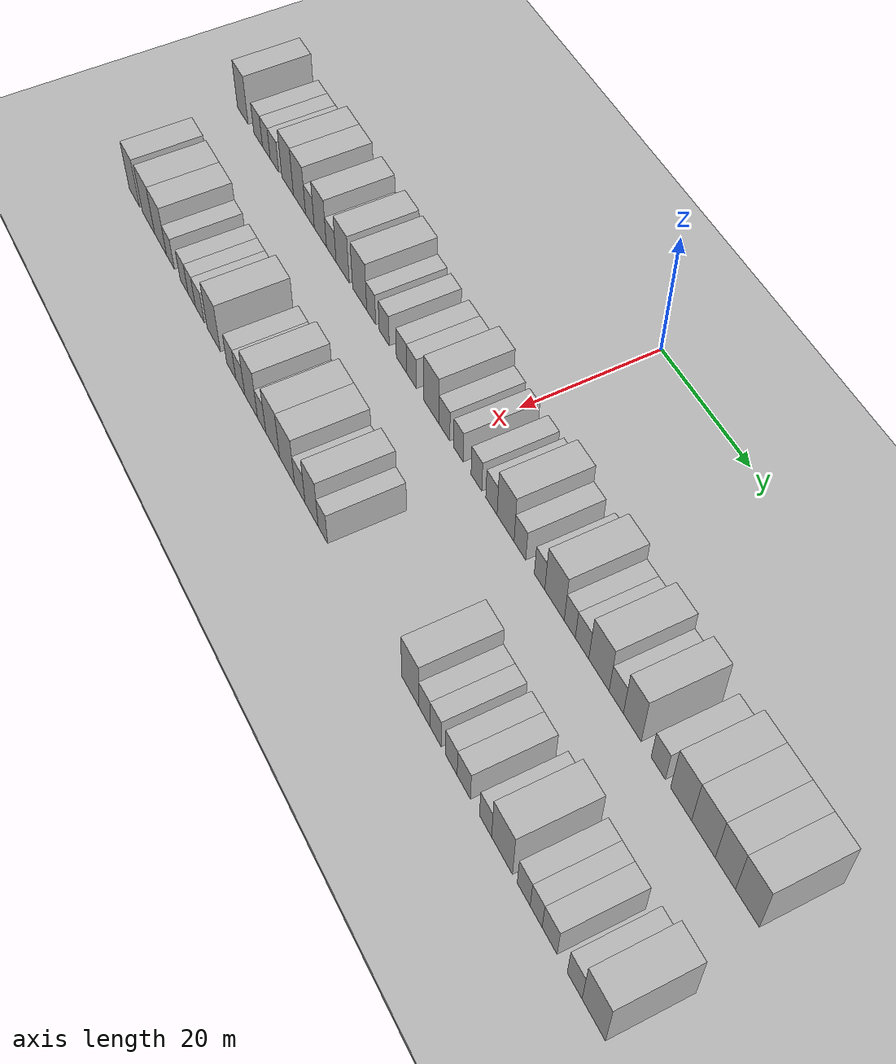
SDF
<sdf version="1.6">
 <world name="default">
  <include><name>ground_plane_1</name><uri>model://HANNAS_ground_plane</uri></include>
  <include>
   <name>ground_plane_2</name>
   <uri>model://HANNAS_ground_plane</uri>
   <pose>100 0 0  0 0 0</pose>
  </include>
  <model name="building_34">
   <static>1</static>
   <pose>25.0000 -61.7479 0 0.000000 0.000000 0.000000</pose>
   <link name="link">
    <pose>0 0 4.50 0 0 0</pose>
    <collision name="collision"><geometry><box><size>10.0000 3.7239 9.0000</size></box></geometry></collision>
    <visual name="visual">
     <cast_shadows>0</cast_shadows>
     <geometry><box><size>10.0000 3.7239 9.0000</size></box></geometry>
     <material>
      <script>
       <uri>model://HANNAS_wall/materials/scripts</uri>
       <uri>model://HANNAS_wall/materials/textures</uri>
       <name>vrc/HANNAS_wall</name>
      </script>
     </material>
    </visual>
   </link>
  </model>
  <model name="building_35">
   <static>1</static>
   <pose>25.0000 -56.4056 0 0.000000 0.000000 0.000000</pose>
   <link name="link">
    <pose>0 0 3.00 0 0 0</pose>
    <collision name="collision"><geometry><box><size>10.0000 2.9605 6.0000</size></box></geometry></collision>
    <visual name="visual">
     <cast_shadows>0</cast_shadows>
     <geometry><box><size>10.0000 2.9605 6.0000</size></box></geometry>
     <material>
      <script>
       <uri>model://HANNAS_wall/materials/scripts</uri>
       <uri>model://HANNAS_wall/materials/textures</uri>
       <name>vrc/HANNAS_wall</name>
      </script>
     </material>
    </visual>
   </link>
  </model>
  <model name="building_36">
   <static>1</static>
   <pose>25.0000 -53.6233 0 0.000000 0.000000 0.000000</pose>
   <link name="link">
    <pose>0 0 3.00 0 0 0</pose>
    <collision name="collision"><geometry><box><size>10.0000 2.6041 6.0000</size></box></geometry></collision>
    <visual name="visual">
     <cast_shadows>0</cast_shadows>
     <geometry><box><size>10.0000 2.6041 6.0000</size></box></geometry>
     <material>
      <script>
       <uri>model://HANNAS_wall/materials/scripts</uri>
       <uri>model://HANNAS_wall/materials/textures</uri>
       <name>vrc/HANNAS_wall</name>
      </script>
     </material>
    </visual>
   </link>
  </model>
  <model name="building_37">
   <static>1</static>
   <pose>25.0000 -50.8717 0 0.000000 0.000000 0.000000</pose>
   <link name="link">
    <pose>0 0 3.00 0 0 0</pose>
    <collision name="collision"><geometry><box><size>10.0000 2.8991 6.0000</size></box></geometry></collision>
    <visual name="visual">
     <cast_shadows>0</cast_shadows>
     <geometry><box><size>10.0000 2.8991 6.0000</size></box></geometry>
     <material>
      <script>
       <uri>model://HANNAS_wall/materials/scripts</uri>
       <uri>model://HANNAS_wall/materials/textures</uri>
       <name>vrc/HANNAS_wall</name>
      </script>
     </material>
    </visual>
   </link>
  </model>
  <model name="building_38">
   <static>1</static>
   <pose>25.0000 -46.5042 0 0.000000 0.000000 0.000000</pose>
   <link name="link">
    <pose>0 0 4.50 0 0 0</pose>
    <collision name="collision"><geometry><box><size>10.0000 3.8361 9.0000</size></box></geometry></collision>
    <visual name="visual">
     <cast_shadows>0</cast_shadows>
     <geometry><box><size>10.0000 3.8361 9.0000</size></box></geometry>
     <material>
      <script>
       <uri>model://HANNAS_wall/materials/scripts</uri>
       <uri>model://HANNAS_wall/materials/textures</uri>
       <name>vrc/HANNAS_wall</name>
      </script>
     </material>
    </visual>
   </link>
  </model>
  <model name="building_39">
   <static>1</static>
   <pose>25.0000 -42.6368 0 0.000000 0.000000 0.000000</pose>
   <link name="link">
    <pose>0 0 4.50 0 0 0</pose>
    <collision name="collision"><geometry><box><size>10.0000 3.8986 9.0000</size></box></geometry></collision>
    <visual name="visual">
     <cast_shadows>0</cast_shadows>
     <geometry><box><size>10.0000 3.8986 9.0000</size></box></geometry>
     <material>
      <script>
       <uri>model://HANNAS_wall/materials/scripts</uri>
       <uri>model://HANNAS_wall/materials/textures</uri>
       <name>vrc/HANNAS_wall</name>
      </script>
     </material>
    </visual>
   </link>
  </model>
  <model name="building_40">
   <static>1</static>
   <pose>25.0000 -39.2942 0 0.000000 0.000000 0.000000</pose>
   <link name="link">
    <pose>0 0 3.00 0 0 0</pose>
    <collision name="collision"><geometry><box><size>10.0000 2.7866 6.0000</size></box></geometry></collision>
    <visual name="visual">
     <cast_shadows>0</cast_shadows>
     <geometry><box><size>10.0000 2.7866 6.0000</size></box></geometry>
     <material>
      <script>
       <uri>model://HANNAS_wall/materials/scripts</uri>
       <uri>model://HANNAS_wall/materials/textures</uri>
       <name>vrc/HANNAS_wall</name>
      </script>
     </material>
    </visual>
   </link>
  </model>
  <model name="building_41">
   <static>1</static>
   <pose>25.0000 -36.0034 0 0.000000 0.000000 0.000000</pose>
   <link name="link">
    <pose>0 0 4.50 0 0 0</pose>
    <collision name="collision"><geometry><box><size>10.0000 3.7951 9.0000</size></box></geometry></collision>
    <visual name="visual">
     <cast_shadows>0</cast_shadows>
     <geometry><box><size>10.0000 3.7951 9.0000</size></box></geometry>
     <material>
      <script>
       <uri>model://HANNAS_wall/materials/scripts</uri>
       <uri>model://HANNAS_wall/materials/textures</uri>
       <name>vrc/HANNAS_wall</name>
      </script>
     </material>
    </visual>
   </link>
  </model>
  <model name="building_42">
   <static>1</static>
   <pose>25.0000 -32.6270 0 0.000000 0.000000 0.000000</pose>
   <link name="link">
    <pose>0 0 3.00 0 0 0</pose>
    <collision name="collision"><geometry><box><size>10.0000 2.9575 6.0000</size></box></geometry></collision>
    <visual name="visual">
     <cast_shadows>0</cast_shadows>
     <geometry><box><size>10.0000 2.9575 6.0000</size></box></geometry>
     <material>
      <script>
       <uri>model://HANNAS_wall/materials/scripts</uri>
       <uri>model://HANNAS_wall/materials/textures</uri>
       <name>vrc/HANNAS_wall</name>
      </script>
     </material>
    </visual>
   </link>
  </model>
  <model name="building_43">
   <static>1</static>
   <pose>25.0000 -29.1503 0 0.000000 0.000000 0.000000</pose>
   <link name="link">
    <pose>0 0 4.50 0 0 0</pose>
    <collision name="collision"><geometry><box><size>10.0000 3.9960 9.0000</size></box></geometry></collision>
    <visual name="visual">
     <cast_shadows>0</cast_shadows>
     <geometry><box><size>10.0000 3.9960 9.0000</size></box></geometry>
     <material>
      <script>
       <uri>model://HANNAS_wall/materials/scripts</uri>
       <uri>model://HANNAS_wall/materials/textures</uri>
       <name>vrc/HANNAS_wall</name>
      </script>
     </material>
    </visual>
   </link>
  </model>
  <model name="building_44">
   <static>1</static>
   <pose>25.0000 -24.0661 0 0.000000 0.000000 0.000000</pose>
   <link name="link">
    <pose>0 0 4.50 0 0 0</pose>
    <collision name="collision"><geometry><box><size>10.0000 4.1723 9.0000</size></box></geometry></collision>
    <visual name="visual">
     <cast_shadows>0</cast_shadows>
     <geometry><box><size>10.0000 4.1723 9.0000</size></box></geometry>
     <material>
      <script>
       <uri>model://HANNAS_wall/materials/scripts</uri>
       <uri>model://HANNAS_wall/materials/textures</uri>
       <name>vrc/HANNAS_wall</name>
      </script>
     </material>
    </visual>
   </link>
  </model>
  <model name="building_45">
   <static>1</static>
   <pose>25.0000 -20.6764 0 0.000000 0.000000 0.000000</pose>
   <link name="link">
    <pose>0 0 3.00 0 0 0</pose>
    <collision name="collision"><geometry><box><size>10.0000 2.6072 6.0000</size></box></geometry></collision>
    <visual name="visual">
     <cast_shadows>0</cast_shadows>
     <geometry><box><size>10.0000 2.6072 6.0000</size></box></geometry>
     <material>
      <script>
       <uri>model://HANNAS_wall/materials/scripts</uri>
       <uri>model://HANNAS_wall/materials/textures</uri>
       <name>vrc/HANNAS_wall</name>
      </script>
     </material>
    </visual>
   </link>
  </model>
  <model name="building_46">
   <static>1</static>
   <pose>25.0000 -16.9450 0 0.000000 0.000000 0.000000</pose>
   <link name="link">
    <pose>0 0 3.00 0 0 0</pose>
    <collision name="collision"><geometry><box><size>10.0000 2.8556 6.0000</size></box></geometry></collision>
    <visual name="visual">
     <cast_shadows>0</cast_shadows>
     <geometry><box><size>10.0000 2.8556 6.0000</size></box></geometry>
     <material>
      <script>
       <uri>model://HANNAS_wall/materials/scripts</uri>
       <uri>model://HANNAS_wall/materials/textures</uri>
       <name>vrc/HANNAS_wall</name>
      </script>
     </material>
    </visual>
   </link>
  </model>
  <model name="building_47">
   <static>1</static>
   <pose>25.0000 -12.0820 0 0.000000 0.000000 0.000000</pose>
   <link name="link">
    <pose>0 0 3.00 0 0 0</pose>
    <collision name="collision"><geometry><box><size>10.0000 2.8704 6.0000</size></box></geometry></collision>
    <visual name="visual">
     <cast_shadows>0</cast_shadows>
     <geometry><box><size>10.0000 2.8704 6.0000</size></box></geometry>
     <material>
      <script>
       <uri>model://HANNAS_wall/materials/scripts</uri>
       <uri>model://HANNAS_wall/materials/textures</uri>
       <name>vrc/HANNAS_wall</name>
      </script>
     </material>
    </visual>
   </link>
  </model>
  <model name="building_48">
   <static>1</static>
   <pose>25.0000 -9.2981 0 0.000000 0.000000 0.000000</pose>
   <link name="link">
    <pose>0 0 3.00 0 0 0</pose>
    <collision name="collision"><geometry><box><size>10.0000 2.6974 6.0000</size></box></geometry></collision>
    <visual name="visual">
     <cast_shadows>0</cast_shadows>
     <geometry><box><size>10.0000 2.6974 6.0000</size></box></geometry>
     <material>
      <script>
       <uri>model://HANNAS_wall/materials/scripts</uri>
       <uri>model://HANNAS_wall/materials/textures</uri>
       <name>vrc/HANNAS_wall</name>
      </script>
     </material>
    </visual>
   </link>
  </model>
  <model name="building_49">
   <static>1</static>
   <pose>25.0000 -3.9427 0 0.000000 0.000000 0.000000</pose>
   <link name="link">
    <pose>0 0 4.50 0 0 0</pose>
    <collision name="collision"><geometry><box><size>10.0000 4.0133 9.0000</size></box></geometry></collision>
    <visual name="visual">
     <cast_shadows>0</cast_shadows>
     <geometry><box><size>10.0000 4.0133 9.0000</size></box></geometry>
     <material>
      <script>
       <uri>model://HANNAS_wall/materials/scripts</uri>
       <uri>model://HANNAS_wall/materials/textures</uri>
       <name>vrc/HANNAS_wall</name>
      </script>
     </material>
    </visual>
   </link>
  </model>
  <model name="building_50">
   <static>1</static>
   <pose>25.0000 -0.5174 0 0.000000 0.000000 0.000000</pose>
   <link name="link">
    <pose>0 0 3.00 0 0 0</pose>
    <collision name="collision"><geometry><box><size>10.0000 2.8372 6.0000</size></box></geometry></collision>
    <visual name="visual">
     <cast_shadows>0</cast_shadows>
     <geometry><box><size>10.0000 2.8372 6.0000</size></box></geometry>
     <material>
      <script>
       <uri>model://HANNAS_wall/materials/scripts</uri>
       <uri>model://HANNAS_wall/materials/textures</uri>
       <name>vrc/HANNAS_wall</name>
      </script>
     </material>
    </visual>
   </link>
  </model>
  <model name="building_51">
   <static>1</static>
   <pose>25.0000 3.1244 0 0.000000 0.000000 0.000000</pose>
   <link name="link">
    <pose>0 0 3.00 0 0 0</pose>
    <collision name="collision"><geometry><box><size>10.0000 2.4465 6.0000</size></box></geometry></collision>
    <visual name="visual">
     <cast_shadows>0</cast_shadows>
     <geometry><box><size>10.0000 2.4465 6.0000</size></box></geometry>
     <material>
      <script>
       <uri>model://HANNAS_wall/materials/scripts</uri>
       <uri>model://HANNAS_wall/materials/textures</uri>
       <name>vrc/HANNAS_wall</name>
      </script>
     </material>
    </visual>
   </link>
  </model>
  <model name="building_52">
   <static>1</static>
   <pose>25.0000 7.6883 0 0.000000 0.000000 0.000000</pose>
   <link name="link">
    <pose>0 0 3.00 0 0 0</pose>
    <collision name="collision"><geometry><box><size>10.0000 2.6811 6.0000</size></box></geometry></collision>
    <visual name="visual">
     <cast_shadows>0</cast_shadows>
     <geometry><box><size>10.0000 2.6811 6.0000</size></box></geometry>
     <material>
      <script>
       <uri>model://HANNAS_wall/materials/scripts</uri>
       <uri>model://HANNAS_wall/materials/textures</uri>
       <name>vrc/HANNAS_wall</name>
      </script>
     </material>
    </visual>
   </link>
  </model>
  <model name="building_53">
   <static>1</static>
   <pose>25.0000 11.4147 0 0.000000 0.000000 0.000000</pose>
   <link name="link">
    <pose>0 0 3.00 0 0 0</pose>
    <collision name="collision"><geometry><box><size>10.0000 2.7717 6.0000</size></box></geometry></collision>
    <visual name="visual">
     <cast_shadows>0</cast_shadows>
     <geometry><box><size>10.0000 2.7717 6.0000</size></box></geometry>
     <material>
      <script>
       <uri>model://HANNAS_wall/materials/scripts</uri>
       <uri>model://HANNAS_wall/materials/textures</uri>
       <name>vrc/HANNAS_wall</name>
      </script>
     </material>
    </visual>
   </link>
  </model>
  <model name="building_54">
   <static>1</static>
   <pose>25.0000 14.8479 0 0.000000 0.000000 0.000000</pose>
   <link name="link">
    <pose>0 0 4.50 0 0 0</pose>
    <collision name="collision"><geometry><box><size>10.0000 4.0949 9.0000</size></box></geometry></collision>
    <visual name="visual">
     <cast_shadows>0</cast_shadows>
     <geometry><box><size>10.0000 4.0949 9.0000</size></box></geometry>
     <material>
      <script>
       <uri>model://HANNAS_wall/materials/scripts</uri>
       <uri>model://HANNAS_wall/materials/textures</uri>
       <name>vrc/HANNAS_wall</name>
      </script>
     </material>
    </visual>
   </link>
  </model>
  <model name="building_55">
   <static>1</static>
   <pose>25.0000 18.2816 0 0.000000 0.000000 0.000000</pose>
   <link name="link">
    <pose>0 0 3.00 0 0 0</pose>
    <collision name="collision"><geometry><box><size>10.0000 2.7725 6.0000</size></box></geometry></collision>
    <visual name="visual">
     <cast_shadows>0</cast_shadows>
     <geometry><box><size>10.0000 2.7725 6.0000</size></box></geometry>
     <material>
      <script>
       <uri>model://HANNAS_wall/materials/scripts</uri>
       <uri>model://HANNAS_wall/materials/textures</uri>
       <name>vrc/HANNAS_wall</name>
      </script>
     </material>
    </visual>
   </link>
  </model>
  <model name="building_56">
   <static>1</static>
   <pose>25.0000 22.8732 0 0.000000 0.000000 0.000000</pose>
   <link name="link">
    <pose>0 0 3.00 0 0 0</pose>
    <collision name="collision"><geometry><box><size>10.0000 2.4108 6.0000</size></box></geometry></collision>
    <visual name="visual">
     <cast_shadows>0</cast_shadows>
     <geometry><box><size>10.0000 2.4108 6.0000</size></box></geometry>
     <material>
      <script>
       <uri>model://HANNAS_wall/materials/scripts</uri>
       <uri>model://HANNAS_wall/materials/textures</uri>
       <name>vrc/HANNAS_wall</name>
      </script>
     </material>
    </visual>
   </link>
  </model>
  <model name="building_57">
   <static>1</static>
   <pose>25.0000 26.2850 0 0.000000 0.000000 0.000000</pose>
   <link name="link">
    <pose>0 0 4.50 0 0 0</pose>
    <collision name="collision"><geometry><box><size>10.0000 4.4127 9.0000</size></box></geometry></collision>
    <visual name="visual">
     <cast_shadows>0</cast_shadows>
     <geometry><box><size>10.0000 4.4127 9.0000</size></box></geometry>
     <material>
      <script>
       <uri>model://HANNAS_wall/materials/scripts</uri>
       <uri>model://HANNAS_wall/materials/textures</uri>
       <name>vrc/HANNAS_wall</name>
      </script>
     </material>
    </visual>
   </link>
  </model>
  <model name="building_58">
   <static>1</static>
   <pose>25.0000 29.7248 0 0.000000 0.000000 0.000000</pose>
   <link name="link">
    <pose>0 0 3.00 0 0 0</pose>
    <collision name="collision"><geometry><box><size>10.0000 2.4670 6.0000</size></box></geometry></collision>
    <visual name="visual">
     <cast_shadows>0</cast_shadows>
     <geometry><box><size>10.0000 2.4670 6.0000</size></box></geometry>
     <material>
      <script>
       <uri>model://HANNAS_wall/materials/scripts</uri>
       <uri>model://HANNAS_wall/materials/textures</uri>
       <name>vrc/HANNAS_wall</name>
      </script>
     </material>
    </visual>
   </link>
  </model>
  <model name="building_59">
   <static>1</static>
   <pose>25.0000 32.4260 0 0.000000 0.000000 0.000000</pose>
   <link name="link">
    <pose>0 0 3.00 0 0 0</pose>
    <collision name="collision"><geometry><box><size>10.0000 2.9354 6.0000</size></box></geometry></collision>
    <visual name="visual">
     <cast_shadows>0</cast_shadows>
     <geometry><box><size>10.0000 2.9354 6.0000</size></box></geometry>
     <material>
      <script>
       <uri>model://HANNAS_wall/materials/scripts</uri>
       <uri>model://HANNAS_wall/materials/textures</uri>
       <name>vrc/HANNAS_wall</name>
      </script>
     </material>
    </visual>
   </link>
  </model>
  <model name="building_60">
   <static>1</static>
   <pose>25.0000 36.0770 0 0.000000 0.000000 0.000000</pose>
   <link name="link">
    <pose>0 0 4.50 0 0 0</pose>
    <collision name="collision"><geometry><box><size>10.0000 4.3665 9.0000</size></box></geometry></collision>
    <visual name="visual">
     <cast_shadows>0</cast_shadows>
     <geometry><box><size>10.0000 4.3665 9.0000</size></box></geometry>
     <material>
      <script>
       <uri>model://HANNAS_wall/materials/scripts</uri>
       <uri>model://HANNAS_wall/materials/textures</uri>
       <name>vrc/HANNAS_wall</name>
      </script>
     </material>
    </visual>
   </link>
  </model>
  <model name="building_61">
   <static>1</static>
   <pose>25.0000 39.7541 0 0.000000 0.000000 0.000000</pose>
   <link name="link">
    <pose>0 0 3.00 0 0 0</pose>
    <collision name="collision"><geometry><box><size>10.0000 2.9877 6.0000</size></box></geometry></collision>
    <visual name="visual">
     <cast_shadows>0</cast_shadows>
     <geometry><box><size>10.0000 2.9877 6.0000</size></box></geometry>
     <material>
      <script>
       <uri>model://HANNAS_wall/materials/scripts</uri>
       <uri>model://HANNAS_wall/materials/textures</uri>
       <name>vrc/HANNAS_wall</name>
      </script>
     </material>
    </visual>
   </link>
  </model>
  <model name="building_62">
   <static>1</static>
   <pose>25.0000 43.0834 0 0.000000 0.000000 0.000000</pose>
   <link name="link">
    <pose>0 0 4.50 0 0 0</pose>
    <collision name="collision"><geometry><box><size>10.0000 3.6708 9.0000</size></box></geometry></collision>
    <visual name="visual">
     <cast_shadows>0</cast_shadows>
     <geometry><box><size>10.0000 3.6708 9.0000</size></box></geometry>
     <material>
      <script>
       <uri>model://HANNAS_wall/materials/scripts</uri>
       <uri>model://HANNAS_wall/materials/textures</uri>
       <name>vrc/HANNAS_wall</name>
      </script>
     </material>
    </visual>
   </link>
  </model>
  <model name="building_63">
   <static>1</static>
   <pose>25.0000 48.3474 0 0.000000 0.000000 0.000000</pose>
   <link name="link">
    <pose>0 0 3.00 0 0 0</pose>
    <collision name="collision"><geometry><box><size>10.0000 2.8573 6.0000</size></box></geometry></collision>
    <visual name="visual">
     <cast_shadows>0</cast_shadows>
     <geometry><box><size>10.0000 2.8573 6.0000</size></box></geometry>
     <material>
      <script>
       <uri>model://HANNAS_wall/materials/scripts</uri>
       <uri>model://HANNAS_wall/materials/textures</uri>
       <name>vrc/HANNAS_wall</name>
      </script>
     </material>
    </visual>
   </link>
  </model>
  <model name="building_64">
   <static>1</static>
   <pose>25.0000 52.8210 0 0.000000 0.000000 0.000000</pose>
   <link name="link">
    <pose>0 0 4.50 0 0 0</pose>
    <collision name="collision"><geometry><box><size>10.0000 4.0899 9.0000</size></box></geometry></collision>
    <visual name="visual">
     <cast_shadows>0</cast_shadows>
     <geometry><box><size>10.0000 4.0899 9.0000</size></box></geometry>
     <material>
      <script>
       <uri>model://HANNAS_wall/materials/scripts</uri>
       <uri>model://HANNAS_wall/materials/textures</uri>
       <name>vrc/HANNAS_wall</name>
      </script>
     </material>
    </visual>
   </link>
  </model>
  <model name="building_65">
   <static>1</static>
   <pose>25.0000 57.0974 0 0.000000 0.000000 0.000000</pose>
   <link name="link">
    <pose>0 0 4.50 0 0 0</pose>
    <collision name="collision"><geometry><box><size>10.0000 4.4629 9.0000</size></box></geometry></collision>
    <visual name="visual">
     <cast_shadows>0</cast_shadows>
     <geometry><box><size>10.0000 4.4629 9.0000</size></box></geometry>
     <material>
      <script>
       <uri>model://HANNAS_wall/materials/scripts</uri>
       <uri>model://HANNAS_wall/materials/textures</uri>
       <name>vrc/HANNAS_wall</name>
      </script>
     </material>
    </visual>
   </link>
  </model>
  <model name="building_66">
   <static>1</static>
   <pose>25.0000 61.1951 0 0.000000 0.000000 0.000000</pose>
   <link name="link">
    <pose>0 0 4.50 0 0 0</pose>
    <collision name="collision"><geometry><box><size>10.0000 3.7323 9.0000</size></box></geometry></collision>
    <visual name="visual">
     <cast_shadows>0</cast_shadows>
     <geometry><box><size>10.0000 3.7323 9.0000</size></box></geometry>
     <material>
      <script>
       <uri>model://HANNAS_wall/materials/scripts</uri>
       <uri>model://HANNAS_wall/materials/textures</uri>
       <name>vrc/HANNAS_wall</name>
      </script>
     </material>
    </visual>
   </link>
  </model>
  <model name="building_67">
   <static>1</static>
   <pose>25.0000 65.2135 0 0.000000 0.000000 0.000000</pose>
   <link name="link">
    <pose>0 0 4.50 0 0 0</pose>
    <collision name="collision"><geometry><box><size>10.0000 4.3045 9.0000</size></box></geometry></collision>
    <visual name="visual">
     <cast_shadows>0</cast_shadows>
     <geometry><box><size>10.0000 4.3045 9.0000</size></box></geometry>
     <material>
      <script>
       <uri>model://HANNAS_wall/materials/scripts</uri>
       <uri>model://HANNAS_wall/materials/textures</uri>
       <name>vrc/HANNAS_wall</name>
      </script>
     </material>
    </visual>
   </link>
  </model>
  <model name="building_130">
   <static>1</static>
   <pose>44.0000 -53.7230 0 0.000000 0.000000 0.000000</pose>
   <link name="link">
    <pose>0 0 4.50 0 0 0</pose>
    <collision name="collision"><geometry><box><size>10.0000 3.8484 9.0000</size></box></geometry></collision>
    <visual name="visual">
     <cast_shadows>0</cast_shadows>
     <geometry><box><size>10.0000 3.8484 9.0000</size></box></geometry>
     <material>
      <script>
       <uri>model://HANNAS_wall/materials/scripts</uri>
       <uri>model://HANNAS_wall/materials/textures</uri>
       <name>vrc/HANNAS_wall</name>
      </script>
     </material>
    </visual>
   </link>
  </model>
  <model name="building_131">
   <static>1</static>
   <pose>44.0000 -48.5609 0 0.000000 0.000000 0.000000</pose>
   <link name="link">
    <pose>0 0 4.50 0 0 0</pose>
    <collision name="collision"><geometry><box><size>10.0000 4.4759 9.0000</size></box></geometry></collision>
    <visual name="visual">
     <cast_shadows>0</cast_shadows>
     <geometry><box><size>10.0000 4.4759 9.0000</size></box></geometry>
     <material>
      <script>
       <uri>model://HANNAS_wall/materials/scripts</uri>
       <uri>model://HANNAS_wall/materials/textures</uri>
       <name>vrc/HANNAS_wall</name>
      </script>
     </material>
    </visual>
   </link>
  </model>
  <model name="building_132">
   <static>1</static>
   <pose>44.0000 -44.2347 0 0.000000 0.000000 0.000000</pose>
   <link name="link">
    <pose>0 0 4.50 0 0 0</pose>
    <collision name="collision"><geometry><box><size>10.0000 4.1763 9.0000</size></box></geometry></collision>
    <visual name="visual">
     <cast_shadows>0</cast_shadows>
     <geometry><box><size>10.0000 4.1763 9.0000</size></box></geometry>
     <material>
      <script>
       <uri>model://HANNAS_wall/materials/scripts</uri>
       <uri>model://HANNAS_wall/materials/textures</uri>
       <name>vrc/HANNAS_wall</name>
      </script>
     </material>
    </visual>
   </link>
  </model>
  <model name="building_133">
   <static>1</static>
   <pose>44.0000 -40.7805 0 0.000000 0.000000 0.000000</pose>
   <link name="link">
    <pose>0 0 3.00 0 0 0</pose>
    <collision name="collision"><geometry><box><size>10.0000 2.7321 6.0000</size></box></geometry></collision>
    <visual name="visual">
     <cast_shadows>0</cast_shadows>
     <geometry><box><size>10.0000 2.7321 6.0000</size></box></geometry>
     <material>
      <script>
       <uri>model://HANNAS_wall/materials/scripts</uri>
       <uri>model://HANNAS_wall/materials/textures</uri>
       <name>vrc/HANNAS_wall</name>
      </script>
     </material>
    </visual>
   </link>
  </model>
  <model name="building_134">
   <static>1</static>
   <pose>44.0000 -36.0604 0 0.000000 0.000000 0.000000</pose>
   <link name="link">
    <pose>0 0 3.00 0 0 0</pose>
    <collision name="collision"><geometry><box><size>10.0000 2.7082 6.0000</size></box></geometry></collision>
    <visual name="visual">
     <cast_shadows>0</cast_shadows>
     <geometry><box><size>10.0000 2.7082 6.0000</size></box></geometry>
     <material>
      <script>
       <uri>model://HANNAS_wall/materials/scripts</uri>
       <uri>model://HANNAS_wall/materials/textures</uri>
       <name>vrc/HANNAS_wall</name>
      </script>
     </material>
    </visual>
   </link>
  </model>
  <model name="building_135">
   <static>1</static>
   <pose>44.0000 -33.4854 0 0.000000 0.000000 0.000000</pose>
   <link name="link">
    <pose>0 0 3.00 0 0 0</pose>
    <collision name="collision"><geometry><box><size>10.0000 2.4419 6.0000</size></box></geometry></collision>
    <visual name="visual">
     <cast_shadows>0</cast_shadows>
     <geometry><box><size>10.0000 2.4419 6.0000</size></box></geometry>
     <material>
      <script>
       <uri>model://HANNAS_wall/materials/scripts</uri>
       <uri>model://HANNAS_wall/materials/textures</uri>
       <name>vrc/HANNAS_wall</name>
      </script>
     </material>
    </visual>
   </link>
  </model>
  <model name="building_136">
   <static>1</static>
   <pose>44.0000 -30.8002 0 0.000000 0.000000 0.000000</pose>
   <link name="link">
    <pose>0 0 3.00 0 0 0</pose>
    <collision name="collision"><geometry><box><size>10.0000 2.9286 6.0000</size></box></geometry></collision>
    <visual name="visual">
     <cast_shadows>0</cast_shadows>
     <geometry><box><size>10.0000 2.9286 6.0000</size></box></geometry>
     <material>
      <script>
       <uri>model://HANNAS_wall/materials/scripts</uri>
       <uri>model://HANNAS_wall/materials/textures</uri>
       <name>vrc/HANNAS_wall</name>
      </script>
     </material>
    </visual>
   </link>
  </model>
  <model name="building_137">
   <static>1</static>
   <pose>44.0000 -26.2030 0 0.000000 0.000000 0.000000</pose>
   <link name="link">
    <pose>0 0 4.50 0 0 0</pose>
    <collision name="collision"><geometry><box><size>10.0000 4.2658 9.0000</size></box></geometry></collision>
    <visual name="visual">
     <cast_shadows>0</cast_shadows>
     <geometry><box><size>10.0000 4.2658 9.0000</size></box></geometry>
     <material>
      <script>
       <uri>model://HANNAS_wall/materials/scripts</uri>
       <uri>model://HANNAS_wall/materials/textures</uri>
       <name>vrc/HANNAS_wall</name>
      </script>
     </material>
    </visual>
   </link>
  </model>
  <model name="building_138">
   <static>1</static>
   <pose>44.0000 -20.6265 0 0.000000 0.000000 0.000000</pose>
   <link name="link">
    <pose>0 0 3.00 0 0 0</pose>
    <collision name="collision"><geometry><box><size>10.0000 2.8872 6.0000</size></box></geometry></collision>
    <visual name="visual">
     <cast_shadows>0</cast_shadows>
     <geometry><box><size>10.0000 2.8872 6.0000</size></box></geometry>
     <material>
      <script>
       <uri>model://HANNAS_wall/materials/scripts</uri>
       <uri>model://HANNAS_wall/materials/textures</uri>
       <name>vrc/HANNAS_wall</name>
      </script>
     </material>
    </visual>
   </link>
  </model>
  <model name="building_139">
   <static>1</static>
   <pose>44.0000 -17.7845 0 0.000000 0.000000 0.000000</pose>
   <link name="link">
    <pose>0 0 3.00 0 0 0</pose>
    <collision name="collision"><geometry><box><size>10.0000 2.7968 6.0000</size></box></geometry></collision>
    <visual name="visual">
     <cast_shadows>0</cast_shadows>
     <geometry><box><size>10.0000 2.7968 6.0000</size></box></geometry>
     <material>
      <script>
       <uri>model://HANNAS_wall/materials/scripts</uri>
       <uri>model://HANNAS_wall/materials/textures</uri>
       <name>vrc/HANNAS_wall</name>
      </script>
     </material>
    </visual>
   </link>
  </model>
  <model name="building_140">
   <static>1</static>
   <pose>44.0000 -14.4493 0 0.000000 0.000000 0.000000</pose>
   <link name="link">
    <pose>0 0 4.50 0 0 0</pose>
    <collision name="collision"><geometry><box><size>10.0000 3.8735 9.0000</size></box></geometry></collision>
    <visual name="visual">
     <cast_shadows>0</cast_shadows>
     <geometry><box><size>10.0000 3.8735 9.0000</size></box></geometry>
     <material>
      <script>
       <uri>model://HANNAS_wall/materials/scripts</uri>
       <uri>model://HANNAS_wall/materials/textures</uri>
       <name>vrc/HANNAS_wall</name>
      </script>
     </material>
    </visual>
   </link>
  </model>
  <model name="building_141">
   <static>1</static>
   <pose>44.0000 -11.2687 0 0.000000 0.000000 0.000000</pose>
   <link name="link">
    <pose>0 0 3.00 0 0 0</pose>
    <collision name="collision"><geometry><box><size>10.0000 2.4877 6.0000</size></box></geometry></collision>
    <visual name="visual">
     <cast_shadows>0</cast_shadows>
     <geometry><box><size>10.0000 2.4877 6.0000</size></box></geometry>
     <material>
      <script>
       <uri>model://HANNAS_wall/materials/scripts</uri>
       <uri>model://HANNAS_wall/materials/textures</uri>
       <name>vrc/HANNAS_wall</name>
      </script>
     </material>
    </visual>
   </link>
  </model>
  <model name="building_142">
   <static>1</static>
   <pose>44.0000 -7.9699 0 0.000000 0.000000 0.000000</pose>
   <link name="link">
    <pose>0 0 4.50 0 0 0</pose>
    <collision name="collision"><geometry><box><size>10.0000 4.1098 9.0000</size></box></geometry></collision>
    <visual name="visual">
     <cast_shadows>0</cast_shadows>
     <geometry><box><size>10.0000 4.1098 9.0000</size></box></geometry>
     <material>
      <script>
       <uri>model://HANNAS_wall/materials/scripts</uri>
       <uri>model://HANNAS_wall/materials/textures</uri>
       <name>vrc/HANNAS_wall</name>
      </script>
     </material>
    </visual>
   </link>
  </model>
  <model name="building_143">
   <static>1</static>
   <pose>44.0000 -3.7766 0 0.000000 0.000000 0.000000</pose>
   <link name="link">
    <pose>0 0 4.50 0 0 0</pose>
    <collision name="collision"><geometry><box><size>10.0000 4.2767 9.0000</size></box></geometry></collision>
    <visual name="visual">
     <cast_shadows>0</cast_shadows>
     <geometry><box><size>10.0000 4.2767 9.0000</size></box></geometry>
     <material>
      <script>
       <uri>model://HANNAS_wall/materials/scripts</uri>
       <uri>model://HANNAS_wall/materials/textures</uri>
       <name>vrc/HANNAS_wall</name>
      </script>
     </material>
    </visual>
   </link>
  </model>
  <model name="building_144">
   <static>1</static>
   <pose>44.0000 -0.1528 0 0.000000 0.000000 0.000000</pose>
   <link name="link">
    <pose>0 0 3.00 0 0 0</pose>
    <collision name="collision"><geometry><box><size>10.0000 2.9710 6.0000</size></box></geometry></collision>
    <visual name="visual">
     <cast_shadows>0</cast_shadows>
     <geometry><box><size>10.0000 2.9710 6.0000</size></box></geometry>
     <material>
      <script>
       <uri>model://HANNAS_wall/materials/scripts</uri>
       <uri>model://HANNAS_wall/materials/textures</uri>
       <name>vrc/HANNAS_wall</name>
      </script>
     </material>
    </visual>
   </link>
  </model>
  <model name="building_145">
   <static>1</static>
   <pose>44.0000 3.1624 0 0.000000 0.000000 0.000000</pose>
   <link name="link">
    <pose>0 0 4.50 0 0 0</pose>
    <collision name="collision"><geometry><box><size>10.0000 3.6594 9.0000</size></box></geometry></collision>
    <visual name="visual">
     <cast_shadows>0</cast_shadows>
     <geometry><box><size>10.0000 3.6594 9.0000</size></box></geometry>
     <material>
      <script>
       <uri>model://HANNAS_wall/materials/scripts</uri>
       <uri>model://HANNAS_wall/materials/textures</uri>
       <name>vrc/HANNAS_wall</name>
      </script>
     </material>
    </visual>
   </link>
  </model>
  <model name="building_146">
   <static>1</static>
   <pose>44.0000 6.2647 0 0.000000 0.000000 0.000000</pose>
   <link name="link">
    <pose>0 0 3.00 0 0 0</pose>
    <collision name="collision"><geometry><box><size>10.0000 2.5452 6.0000</size></box></geometry></collision>
    <visual name="visual">
     <cast_shadows>0</cast_shadows>
     <geometry><box><size>10.0000 2.5452 6.0000</size></box></geometry>
     <material>
      <script>
       <uri>model://HANNAS_wall/materials/scripts</uri>
       <uri>model://HANNAS_wall/materials/textures</uri>
       <name>vrc/HANNAS_wall</name>
      </script>
     </material>
    </visual>
   </link>
  </model>
  <model name="building_147">
   <static>1</static>
   <pose>44.0000 28.7041 0 0.000000 0.000000 0.000000</pose>
   <link name="link">
    <pose>0 0 4.50 0 0 0</pose>
    <collision name="collision"><geometry><box><size>10.0000 4.1113 9.0000</size></box></geometry></collision>
    <visual name="visual">
     <cast_shadows>0</cast_shadows>
     <geometry><box><size>10.0000 4.1113 9.0000</size></box></geometry>
     <material>
      <script>
       <uri>model://HANNAS_wall/materials/scripts</uri>
       <uri>model://HANNAS_wall/materials/textures</uri>
       <name>vrc/HANNAS_wall</name>
      </script>
     </material>
    </visual>
   </link>
  </model>
  <model name="building_148">
   <static>1</static>
   <pose>44.0000 32.0624 0 0.000000 0.000000 0.000000</pose>
   <link name="link">
    <pose>0 0 3.00 0 0 0</pose>
    <collision name="collision"><geometry><box><size>10.0000 2.6053 6.0000</size></box></geometry></collision>
    <visual name="visual">
     <cast_shadows>0</cast_shadows>
     <geometry><box><size>10.0000 2.6053 6.0000</size></box></geometry>
     <material>
      <script>
       <uri>model://HANNAS_wall/materials/scripts</uri>
       <uri>model://HANNAS_wall/materials/textures</uri>
       <name>vrc/HANNAS_wall</name>
      </script>
     </material>
    </visual>
   </link>
  </model>
  <model name="building_149">
   <static>1</static>
   <pose>44.0000 34.6658 0 0.000000 0.000000 0.000000</pose>
   <link name="link">
    <pose>0 0 3.00 0 0 0</pose>
    <collision name="collision"><geometry><box><size>10.0000 2.6015 6.0000</size></box></geometry></collision>
    <visual name="visual">
     <cast_shadows>0</cast_shadows>
     <geometry><box><size>10.0000 2.6015 6.0000</size></box></geometry>
     <material>
      <script>
       <uri>model://HANNAS_wall/materials/scripts</uri>
       <uri>model://HANNAS_wall/materials/textures</uri>
       <name>vrc/HANNAS_wall</name>
      </script>
     </material>
    </visual>
   </link>
  </model>
  <model name="building_150">
   <static>1</static>
   <pose>44.0000 38.2938 0 0.000000 0.000000 0.000000</pose>
   <link name="link">
    <pose>0 0 3.00 0 0 0</pose>
    <collision name="collision"><geometry><box><size>10.0000 2.6545 6.0000</size></box></geometry></collision>
    <visual name="visual">
     <cast_shadows>0</cast_shadows>
     <geometry><box><size>10.0000 2.6545 6.0000</size></box></geometry>
     <material>
      <script>
       <uri>model://HANNAS_wall/materials/scripts</uri>
       <uri>model://HANNAS_wall/materials/textures</uri>
       <name>vrc/HANNAS_wall</name>
      </script>
     </material>
    </visual>
   </link>
  </model>
  <model name="building_151">
   <static>1</static>
   <pose>44.0000 41.1106 0 0.000000 0.000000 0.000000</pose>
   <link name="link">
    <pose>0 0 3.00 0 0 0</pose>
    <collision name="collision"><geometry><box><size>10.0000 2.9793 6.0000</size></box></geometry></collision>
    <visual name="visual">
     <cast_shadows>0</cast_shadows>
     <geometry><box><size>10.0000 2.9793 6.0000</size></box></geometry>
     <material>
      <script>
       <uri>model://HANNAS_wall/materials/scripts</uri>
       <uri>model://HANNAS_wall/materials/textures</uri>
       <name>vrc/HANNAS_wall</name>
      </script>
     </material>
    </visual>
   </link>
  </model>
  <model name="building_152">
   <static>1</static>
   <pose>44.0000 45.9088 0 0.000000 0.000000 0.000000</pose>
   <link name="link">
    <pose>0 0 3.00 0 0 0</pose>
    <collision name="collision"><geometry><box><size>10.0000 2.6171 6.0000</size></box></geometry></collision>
    <visual name="visual">
     <cast_shadows>0</cast_shadows>
     <geometry><box><size>10.0000 2.6171 6.0000</size></box></geometry>
     <material>
      <script>
       <uri>model://HANNAS_wall/materials/scripts</uri>
       <uri>model://HANNAS_wall/materials/textures</uri>
       <name>vrc/HANNAS_wall</name>
      </script>
     </material>
    </visual>
   </link>
  </model>
  <model name="building_153">
   <static>1</static>
   <pose>44.0000 49.4383 0 0.000000 0.000000 0.000000</pose>
   <link name="link">
    <pose>0 0 4.50 0 0 0</pose>
    <collision name="collision"><geometry><box><size>10.0000 4.4421 9.0000</size></box></geometry></collision>
    <visual name="visual">
     <cast_shadows>0</cast_shadows>
     <geometry><box><size>10.0000 4.4421 9.0000</size></box></geometry>
     <material>
      <script>
       <uri>model://HANNAS_wall/materials/scripts</uri>
       <uri>model://HANNAS_wall/materials/textures</uri>
       <name>vrc/HANNAS_wall</name>
      </script>
     </material>
    </visual>
   </link>
  </model>
  <model name="building_154">
   <static>1</static>
   <pose>44.0000 53.9955 0 0.000000 0.000000 0.000000</pose>
   <link name="link">
    <pose>0 0 3.00 0 0 0</pose>
    <collision name="collision"><geometry><box><size>10.0000 2.6722 6.0000</size></box></geometry></collision>
    <visual name="visual">
     <cast_shadows>0</cast_shadows>
     <geometry><box><size>10.0000 2.6722 6.0000</size></box></geometry>
     <material>
      <script>
       <uri>model://HANNAS_wall/materials/scripts</uri>
       <uri>model://HANNAS_wall/materials/textures</uri>
       <name>vrc/HANNAS_wall</name>
      </script>
     </material>
    </visual>
   </link>
  </model>
  <model name="building_155">
   <static>1</static>
   <pose>44.0000 56.5461 0 0.000000 0.000000 0.000000</pose>
   <link name="link">
    <pose>0 0 3.00 0 0 0</pose>
    <collision name="collision"><geometry><box><size>10.0000 2.4291 6.0000</size></box></geometry></collision>
    <visual name="visual">
     <cast_shadows>0</cast_shadows>
     <geometry><box><size>10.0000 2.4291 6.0000</size></box></geometry>
     <material>
      <script>
       <uri>model://HANNAS_wall/materials/scripts</uri>
       <uri>model://HANNAS_wall/materials/textures</uri>
       <name>vrc/HANNAS_wall</name>
      </script>
     </material>
    </visual>
   </link>
  </model>
  <model name="building_156">
   <static>1</static>
   <pose>44.0000 59.2606 0 0.000000 0.000000 0.000000</pose>
   <link name="link">
    <pose>0 0 3.00 0 0 0</pose>
    <collision name="collision"><geometry><box><size>10.0000 2.9999 6.0000</size></box></geometry></collision>
    <visual name="visual">
     <cast_shadows>0</cast_shadows>
     <geometry><box><size>10.0000 2.9999 6.0000</size></box></geometry>
     <material>
      <script>
       <uri>model://HANNAS_wall/materials/scripts</uri>
       <uri>model://HANNAS_wall/materials/textures</uri>
       <name>vrc/HANNAS_wall</name>
      </script>
     </material>
    </visual>
   </link>
  </model>
  <model name="building_157">
   <static>1</static>
   <pose>44.0000 64.1949 0 0.000000 0.000000 0.000000</pose>
   <link name="link">
    <pose>0 0 3.00 0 0 0</pose>
    <collision name="collision"><geometry><box><size>10.0000 2.8688 6.0000</size></box></geometry></collision>
    <visual name="visual">
     <cast_shadows>0</cast_shadows>
     <geometry><box><size>10.0000 2.8688 6.0000</size></box></geometry>
     <material>
      <script>
       <uri>model://HANNAS_wall/materials/scripts</uri>
       <uri>model://HANNAS_wall/materials/textures</uri>
       <name>vrc/HANNAS_wall</name>
      </script>
     </material>
    </visual>
   </link>
  </model>
  <model name="building_158">
   <static>1</static>
   <pose>44.0000 67.8443 0 0.000000 0.000000 0.000000</pose>
   <link name="link">
    <pose>0 0 4.50 0 0 0</pose>
    <collision name="collision"><geometry><box><size>10.0000 4.4299 9.0000</size></box></geometry></collision>
    <visual name="visual">
     <cast_shadows>0</cast_shadows>
     <geometry><box><size>10.0000 4.4299 9.0000</size></box></geometry>
     <material>
      <script>
       <uri>model://HANNAS_wall/materials/scripts</uri>
       <uri>model://HANNAS_wall/materials/textures</uri>
       <name>vrc/HANNAS_wall</name>
      </script>
     </material>
    </visual>
   </link>
  </model>
 </world>
</sdf>
